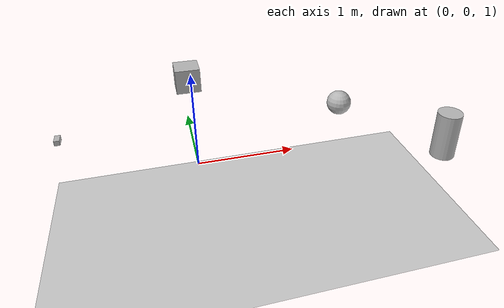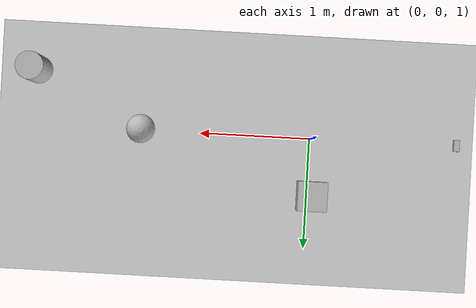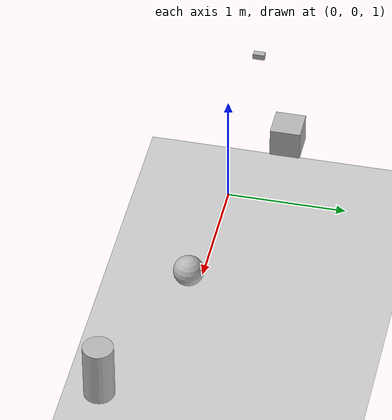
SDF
<?xml version="1.0" ?>
<sdf version="1.5">
  <world name="default">
    <include>
      <uri>https://fuel.ignitionrobotics.org/1.0/OpenRobotics/models/Ground Plane</uri>
    </include>
    <include>
      <uri>https://fuel.ignitionrobotics.org/1.0/OpenRobotics/models/Sun</uri>
    </include>

    <physics name='1ms' type='ignored'>
        <max_step_size>0.001</max_step_size>
        <real_time_factor>1</real_time_factor>
        <real_time_update_rate>1000</real_time_update_rate>
    </physics>

    <plugin name='gz::sim::systems::Physics' filename='gz-sim-physics-system'/>
    <plugin name='gz::sim::systems::UserCommands' filename='gz-sim-user-commands-system'/>
    <plugin name='gz::sim::systems::SceneBroadcaster' filename='gz-sim-scene-broadcaster-system'/>

    <plugin name='gz::sim::systems::Sensors' filename='gz-sim-sensors-system'>
      <render_engine>ogre2</render_engine>
    </plugin>

    <model name="box">
      <pose>0 0.5 1.75 0 0 0</pose>
      <static>true</static>
      <link name="link">
        <collision name="collision">
          <geometry>
            <box>
              <size>0.25 0.25 0.25</size>
            </box>
          </geometry>
        </collision>
        <visual name="visual">
          <geometry>
            <box>
              <size>0.25 0.25 0.25</size>
            </box>
          </geometry>
        </visual>
      </link>
    </model>
    <model name="sphere">
      <static>true</static>
      <pose>1.5 0 1.5 0 0 0</pose>
      <link name="link">
        <collision name="collision">
          <geometry>
            <sphere>
              <radius>0.125</radius>
            </sphere>
          </geometry>
        </collision>
        <visual name="visual">
          <geometry>
            <sphere>
              <radius>0.125</radius>
            </sphere>
          </geometry>
        </visual>
      </link>
    </model>
    <model name="cylinder">
      <static>true</static>
      <pose>2.5 -0.5 1.25 0 0 0</pose>
      <link name="link">
        <collision name="collision">
          <geometry>
            <cylinder>
              <radius>0.25</radius>
              <length>1.0</length>
            </cylinder>
          </geometry>
        </collision>
        <visual name="visual">
          <geometry>
            <cylinder>
              <radius>0.125</radius>
              <length>0.5</length>
            </cylinder>
          </geometry>
        </visual>
      </link>
    </model>

    <model name="depth_camera">

          <link name="reference_frame">
            <pose>-1.25 0 0.35 0 0 0</pose>
          </link>

          <joint name="reference_joint" type="fixed">
            <parent>reference_frame</parent>
            <child>depth_camera</child>
            <pose relative_to="depth_camera">0 0 -1.15 0 0 0</pose>
          </joint>

          <static>true</static>
          <link name="depth_camera">
              <pose>-1.25 0 1.5 0 0 0</pose>
              <visual name="visual">
                  <geometry>
                      <box>
                          <size>0.05 0.1 0.05</size>
                      </box>
                  </geometry>
              </visual>
              <sensor name="depth_camera" type="rgbd_camera">
                  <always_on>true</always_on>
                  <update_rate>5</update_rate>
                  <visualize>true</visualize>
                  <topic>depth_camera</topic>
                  <camera_info_topic>camera_info</camera_info_topic>
                  <camera name="camera">
                      <horizontal_fov>1.02974</horizontal_fov>
                      <image>
                          <width>640</width>
                          <height>480</height>
                          <format>BAYER_RGGB8</format>
                      </image>
                      <clip>
                          <near>0.02</near>
                          <far>10</far>
                      </clip>
                  </camera>
              </sensor>
          </link>
      </model>
  </world>
</sdf>
